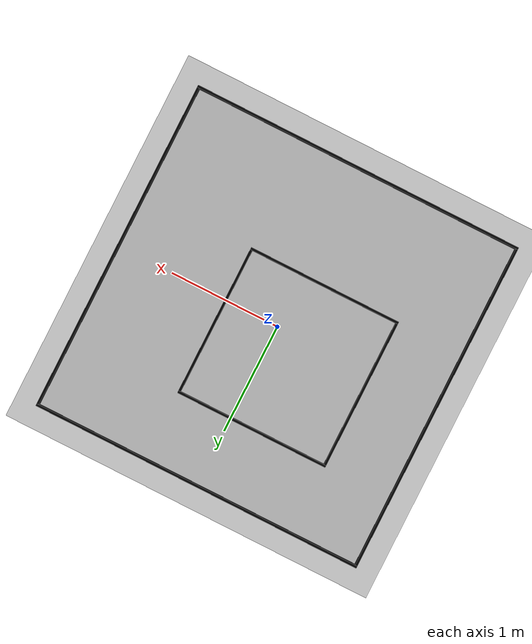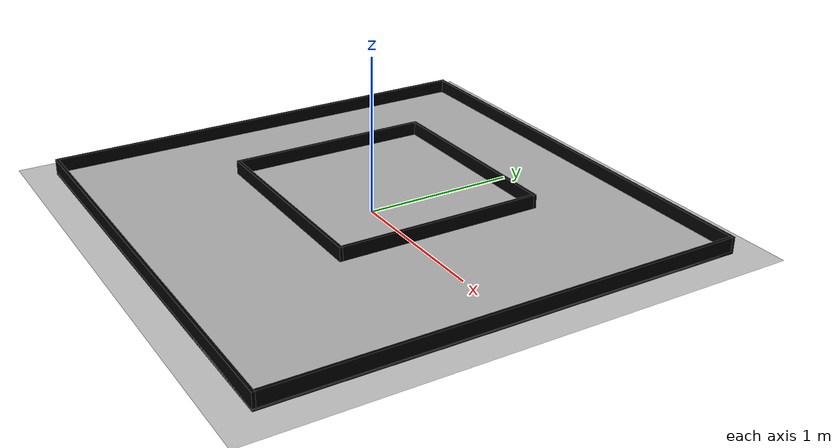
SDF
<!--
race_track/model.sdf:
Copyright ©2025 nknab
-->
<?xml version="1.0" ?>
<sdf version="1.6">
	<world name="race_track">
		<physics name="1ms" type="ignored">
			<max_step_size>0.001</max_step_size>
			<real_time_factor>1.0</real_time_factor>
		</physics>
		<plugin filename="gz-sim-physics-system" name="gz::sim::systems::Physics">
		</plugin>
		<plugin filename="gz-sim-user-commands-system" name="gz::sim::systems::UserCommands">
		</plugin>
		<plugin filename="gz-sim-scene-broadcaster-system" name="gz::sim::systems::SceneBroadcaster">
		</plugin>
		<plugin filename="gz-sim-sensors-system" name="gz::sim::systems::Sensors">
			<render_engine>ogre</render_engine>
		</plugin>
		<plugin filename="gz-sim-contact-system" name="gz::sim::systems::Contact">
		</plugin>
		<plugin filename="gz-sim-imu-system" name="gz::sim::systems::Imu">
		</plugin>
		<gravity>0 0 -9.81</gravity>
		<magnetic_field>5.5645e-06 2.28758e-05 -4.23884e-05</magnetic_field>
		<include>
			<uri>model://models/sun</uri>
		</include>
		<include>
			<uri>model://models/ground_plane</uri>
		</include>
		<include>
			<uri>model://models/race_track</uri>
		</include>
		<!-- Walls -->
		<model name="walls">
			<static>true</static>
			<pose relative_to="race_track">0 0 0.06 0 0 0</pose>
			<link name="top_wall">
				<pose>0 1.51 0 0 0 0</pose>
				<collision name="top_wall_collision">
					<geometry>
						<box>
							<size>3.04 0.02 0.1</size>
						</box>
					</geometry>
				</collision>
				<visual name="top_wall_visual">
					<geometry>
						<box>
							<size>3.04 0.02 0.1</size>
						</box>
					</geometry>
					<material>
						<ambient>0 0 0 1</ambient>
						<diffuse>0 0 0 1</diffuse>
					</material>
				</visual>
			</link>
			<link name="bottom_wall">
				<pose>0 -1.51 0 0 0 0</pose>
				<collision name="bottom_wall_collision">
					<geometry>
						<box>
							<size>3.04 0.02 0.1</size>
						</box>
					</geometry>
				</collision>
				<visual name="bottom_wall_visual">
					<geometry>
						<box>
							<size>3.04 0.02 0.1</size>
						</box>
					</geometry>
					<material>
						<ambient>0 0 0 1</ambient>
						<diffuse>0 0 0 1</diffuse>
					</material>
				</visual>
			</link>
			<link name="left_wall">
				<pose>-1.51 0 0 0 0 0</pose>
				<collision name="left_wall_collision">
					<geometry>
						<box>
							<size>0.02 3.0 0.1</size>
						</box>
					</geometry>
				</collision>
				<visual name="left_wall_visual">
					<geometry>
						<box>
							<size>0.02 3.0 0.1</size>
						</box>
					</geometry>
					<material>
						<ambient>0 0 0 1</ambient>
						<diffuse>0 0 0 1</diffuse>
					</material>
				</visual>
			</link>
			<link name="right_wall">
				<pose>1.51 0 0 0 0 0</pose>
				<collision name="right_wall_collision">
					<geometry>
						<box>
							<size>0.02 3.0 0.1</size>
						</box>
					</geometry>
				</collision>
				<visual name="right_wall_visual">
					<geometry>
						<box>
							<size>0.02 3.0 0.1</size>
						</box>
					</geometry>
					<material>
						<ambient>0 0 0 1</ambient>
						<diffuse>0 0 0 1</diffuse>
					</material>
				</visual>
			</link>
		</model>
		<!-- OPEN CHALLENGE GAME BOARD -->
		<!-- Inner Walls -->
		<model name="inner_walls">
			<static>true</static>
			<pose relative_to="race_track">0 0 0.06 0 0 0</pose>
			<link name="top_inner_wall">
				<pose>-0.2 0.87 0 0 0 0</pose>
				<collision name="top_inner_wall_collision">
					<geometry>
						<box>
							<size>1.4 0.02 0.1</size>
						</box>
					</geometry>
				</collision>
				<visual name="top_inner_wall_visual">
					<geometry>
						<box>
							<size>1.4 0.02 0.1</size>
						</box>
					</geometry>
					<material>
						<ambient>0 0 0 1</ambient>
						<diffuse>0 0 0 1</diffuse>
					</material>
				</visual>
			</link>
			<link name="bottom_inner_wall">
				<pose>-0.2 -0.49 0 0 0 0</pose>
				<collision name="bottom_inner_wall_collision">
					<geometry>
						<box>
							<size>1.4 0.02 0.1</size>
						</box>
					</geometry>
				</collision>
				<visual name="bottom_inner_wall_visual">
					<geometry>
						<box>
							<size>1.4 0.02 0.1</size>
						</box>
					</geometry>
					<material>
						<ambient>0 0 0 1</ambient>
						<diffuse>0 0 0 1</diffuse>
					</material>
				</visual>
			</link>
			<link name="left_inner_wall">
				<pose>-0.89 0.19 0 0 0 0</pose>
				<collision name="left_inner_wall_collision">
					<geometry>
						<box>
							<size>0.02 1.34 0.1</size>
						</box>
					</geometry>
				</collision>
				<visual name="left_inner_wall_visual">
					<geometry>
						<box>
							<size>0.02 1.34 0.1</size>
						</box>
					</geometry>
					<material>
						<ambient>0 0 0 1</ambient>
						<diffuse>0 0 0 1</diffuse>
					</material>
				</visual>
			</link>
			<link name="right_inner_wall">
				<pose>0.49 0.19 0 0 0 0</pose>
				<collision name="right_inner_wall_collision">
					<geometry>
						<box>
							<size>0.02 1.34 0.1</size>
						</box>
					</geometry>
				</collision>
				<visual name="right_inner_wall_visual">
					<geometry>
						<box>
							<size>0.02 1.34 0.1</size>
						</box>
					</geometry>
					<material>
						<ambient>0 0 0 1</ambient>
						<diffuse>0 0 0 1</diffuse>
					</material>
				</visual>
			</link>
		</model>
	</world>
</sdf>

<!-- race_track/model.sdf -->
<sdf version="1.5">

	<model name="race_track">
		<static>true</static>
		<pose>0 0 0.01 0 0 0</pose>
		<link name="race_track_floor">
			<collision name="race_track_floor_collision">
				<geometry>
					<box>
						<size>3.04 3.04 0.017</size>
					</box>
				</geometry>
			</collision>
			<visual name="race_track_floor_visual">
				<geometry>
					<box>
						<size>3.04 3.04 0.017</size>
					</box>
				</geometry>
				<material>
					<ambient>0 0 0 1</ambient>
					<diffuse>0 0 0 1</diffuse>
				</material>
			</visual>
		</link>
		<link name="race_track_surface">
			<pose relative_to="race_track_floor">0 0 0.009 0 0 0</pose>
			<collision name="race_track_surface_collision">
				<geometry>
					<box>
						<size>3.04 3.04 0.003</size>
					</box>
				</geometry>
				<surface>
					<friction>
						<ode>
							<mu>0.5</mu>
							<mu2>0.4</mu2>
						</ode>
					</friction>
				</surface>
			</collision>
			<visual name="race_track_surface_visual">
				<cast_shadows>false</cast_shadows>
				<geometry>
					<mesh>
						<uri>model://models/race_track/meshes/mat.dae</uri>
					</mesh>
				</geometry>
			</visual>
		</link>
	</model>

</sdf>
